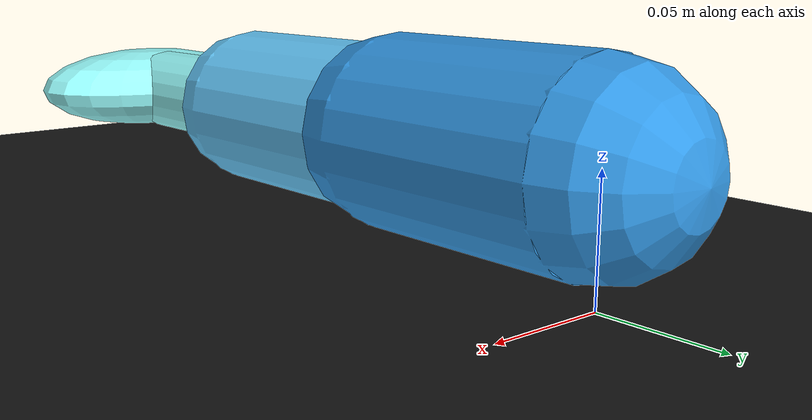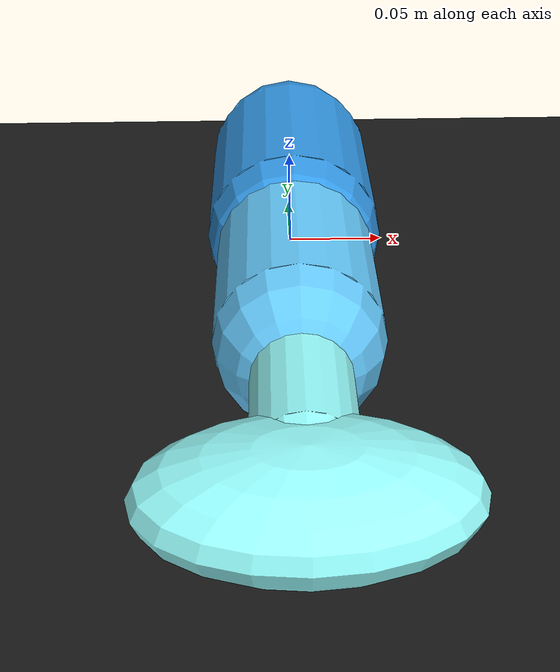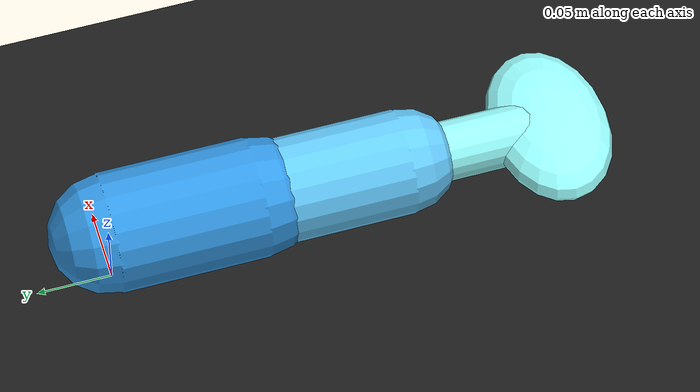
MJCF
<mujoco model="Fish2D_Swimmer">

    <compiler angle="degree" inertiafromgeom="true"/>
    <option timestep="0.01" gravity="0 0 0" integrator="RK4"/>

    <default>
        <joint damping="0.05" stiffness="0" armature="0.01"/>
        <motor ctrlrange="-1 1" ctrllimited="true"/>
        <geom solref="0.001 1" solimp="0.9 0.95 0.001"/>
    </default>

    <asset>
        <material name="head"    rgba="0.2 0.6 0.9 1"/>
        <material name="body"    rgba="0.4 0.8 1.0 1"/>
        <material name="tail"    rgba="0.6 1.0 1.0 1"/>
    </asset>

    <worldbody>
        <geom type="plane" size="5 5 0.1" material="head" rgba="0.1 0.1 0.1 1" pos="0 0 0"/>

        <body name="root" pos="0 0 0.05">
            <joint name="free_xy" type="free"/>

            <!-- Streamlined round head. -->
            <geom name="head_geom" type="capsule"
                  fromto="0 0 0  0 -0.1 0"
                  size="0.04"
                  material="head"
                  density="500"/>

            <!-- Mid-body. -->
            <body name="body" pos="0 -0.1 0">
                <joint name="joint1" type="hinge" axis="0 0 1" range="-45 45"/>

                <geom name="body_geom" type="capsule"
                      fromto="0 0 0  0 -0.1 0"
                      size="0.035"
                      material="body"
                      density="500"/>

                <!-- Tail peduncle and wide fin form one LBM convex hull. -->
                <body name="tail" pos="0 -0.1 0">
                    <joint name="joint2" type="hinge" axis="0 0 1" range="-60 60"/>

                    <!-- Slender tail peduncle. -->
                    <geom name="tail_stem" type="capsule"
                          fromto="0 0 0  0 -0.08 0"
                          size="0.02"
                          material="tail"
                          density="500"/>

                    <!-- Wide propulsive tail fin. -->
                    <geom name="tail_fin" type="ellipsoid"
                          size="0.06 0.04 0.02"
                          pos="0 -0.1 0"
                          material="tail"
                          density="500"/>
                </body>
            </body>
        </body>
        <light directional="true" diffuse="0.9 0.9 0.9" pos="0 0 5" dir="0 0 -1"/>
    </worldbody>

    <actuator>
        <motor joint="joint1" gear="0.15"/>
        <motor joint="joint2" gear="0.2"/>
    </actuator>

</mujoco>
